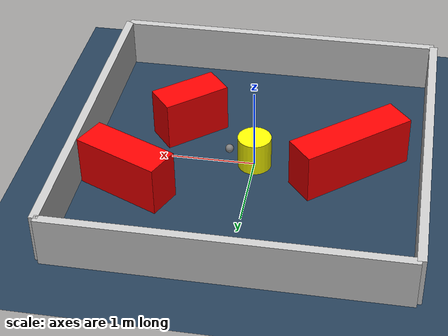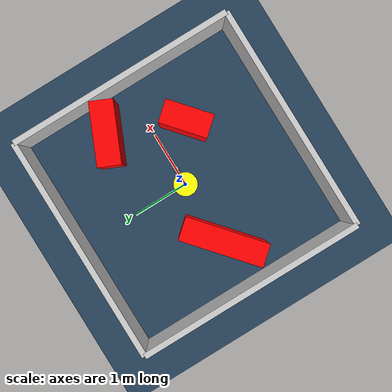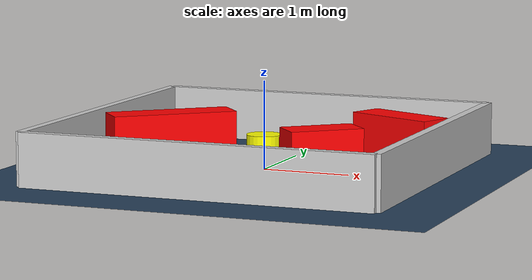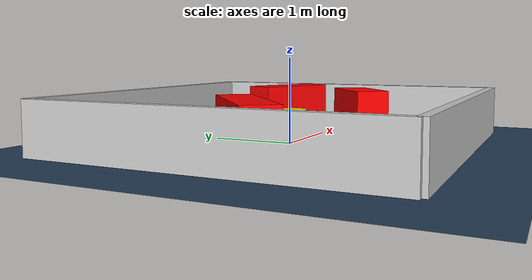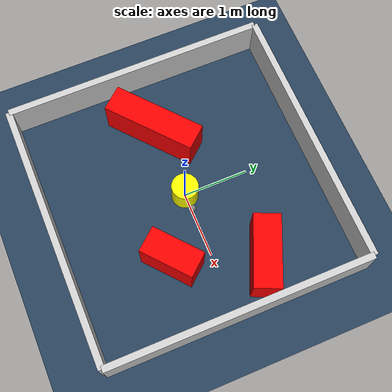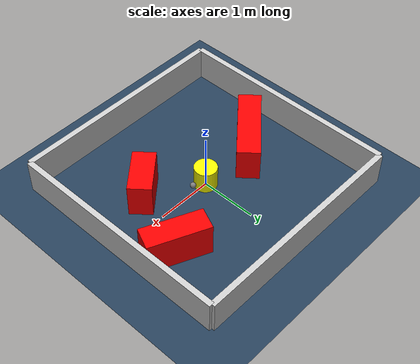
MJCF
<?xml version="1.0" ?>
<mujoco model="generated_environment">
  <option timestep="0.01" integrator="RK4" cone="elliptic"/>
  <default>
    <geom density="1"/>
  </default>
  <asset>
    <texture builtin="gradient" height="3072" rgb1="0.3 0.5 0.7" rgb2="0 0 0" type="skybox" width="512"/>
    <texture builtin="checker" height="300" mark="edge" markrgb="0.8 0.8 0.8" name="groundplane" rgb1="0.2 0.3 0.4" rgb2="0.1 0.2 0.3" type="2d" width="300"/>
    <material name="groundplane" reflectance="0.2" texrepeat="5 5" texture="groundplane" texuniform="true"/>
    <material name="robot" rgba="0.0 1.0 0.0 1"/>
  </asset>
  <worldbody>
    <light dir="0 0 -1" directional="true" pos="0 0 1.5"/>
    <geom condim="4" friction="1.0 0.005 0.001" material="groundplane" name="floor" size="0 0 0.05" type="plane"/>
    <body name="walls">
      <geom name="wall_1" condim="4" pos="-2.0 0.0 0.3" rgba="0.800000011920929 0.800000011920929 0.800000011920929 1.0" size="0.05 2.0 0.3" type="box"/>
      <geom name="wall_2" condim="4" pos="2.0 0.0 0.3" rgba="0.800000011920929 0.800000011920929 0.800000011920929 1.0" size="0.05 2.0 0.3" type="box"/>
      <geom name="wall_3" condim="4" pos="0.0 -2.0 0.3" rgba="0.800000011920929 0.800000011920929 0.800000011920929 1.0" size="2.0 0.05 0.3" type="box"/>
      <geom name="wall_4" condim="4" pos="0.0 2.0 0.3" rgba="0.800000011920929 0.800000011920929 0.800000011920929 1.0" size="2.0 0.05 0.3" type="box"/>
    </body>
    <body name="robot">
      <joint name="joint_x" type="slide" pos="0 0 0" axis="1 0 0"/>
      <joint name="joint_y" type="slide" pos="0 0 0" axis="0 1 0"/>
      <geom name="robot" type="sphere" pos="0.3 0.0 0.2" size="0.05" mass="5." friction="1.0 0.005 0.0001" condim="4" rgba="0.5 0.5 0.5 1.0"/>
      <site name="sensor_ball"/>
    </body>
    <body name="obstacle_movable_1">
      <geom name="obstacle_movable_1" condim="4" pos="0.0 0.0 0.2" euler="0 0 0.0" friction="1.0 0.005 0.001" rgba="1.0 1.0 0.0 1.0" size="0.2 0.2 0.0" type="cylinder" mass="0.1"/>
      <joint type="free"/>
    </body>
    <body name="obstacle_2_static">
      <geom name="obstacle_2_static" condim="4" pos="-1.115224702636581 -0.041295665318324515 0.3" euler="0 0 220.45062411872055" friction="1.0 0.005 0.001" rgba="1 0 0 1" size="0.713026265830203 0.2 0.3" type="box"/>
    </body>
    <body name="obstacle_3_static">
      <geom name="obstacle_3_static" condim="4" pos="1.3727797194222164 0.6674732862691675 0.3" euler="0 0 336.00614985726816" friction="1.0 0.005 0.001" rgba="1 0 0 1" size="0.534079249009311 0.2 0.3" type="box"/>
    </body>
    <body name="obstacle_4_static">
      <geom name="obstacle_4_static" condim="4" pos="0.8874988319361263 -0.5616819919987754 0.3" euler="0 0 40.35858901838747" friction="1.0 0.005 0.001" rgba="1 0 0 1" size="0.4107272216371996 0.2 0.3" type="box"/>
    </body>
  </worldbody>
  <actuator>
    <motor name="actuator_x" joint="joint_x" gear="1" ctrlrange="-1 1"/>
    <motor name="actuator_y" joint="joint_y" gear="1" ctrlrange="-1 1"/>
  </actuator>
</mujoco>
